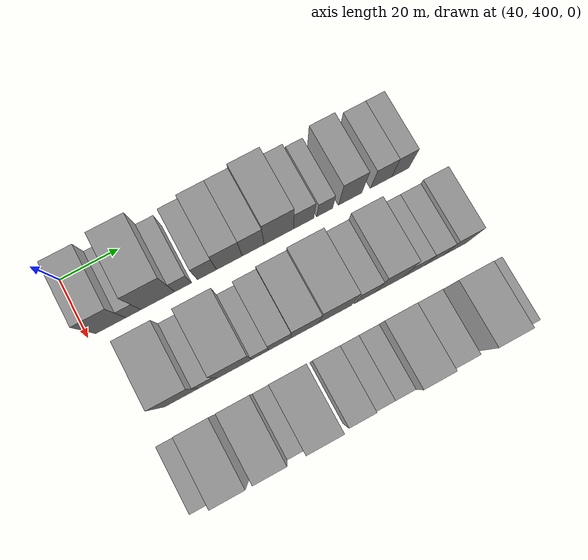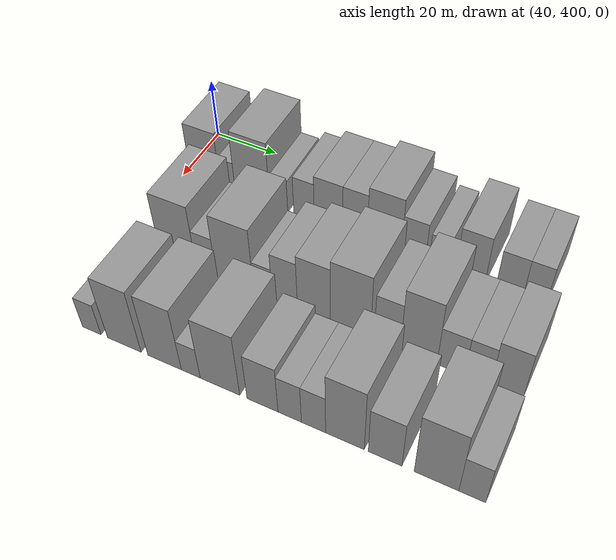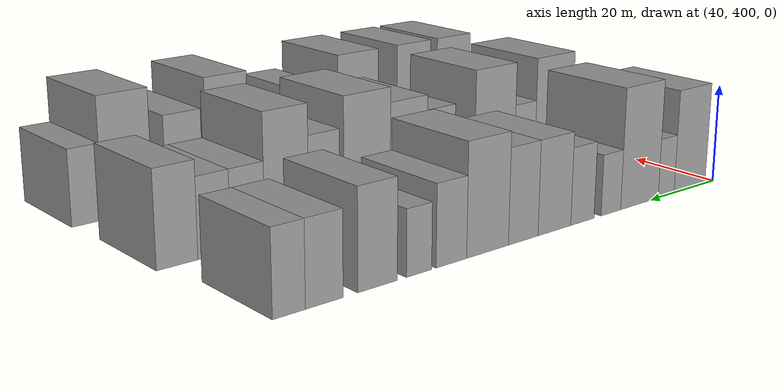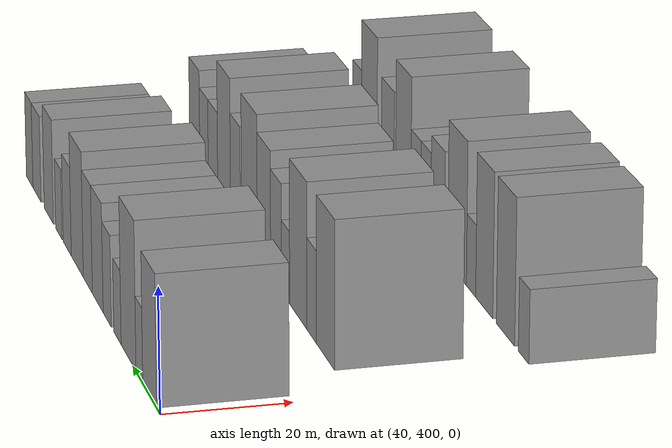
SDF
<sdf version="1.6">
 <world name="default">
  <model name="building_104">
   <static>1</static>
   <pose>50.0000 407.6872 0 0.000000 0.000000 0.000000</pose>
   <link name="link">
    <pose>0 0 10.50 0 0 0</pose>
    <collision name="collision"><geometry><box><size>20.0000 10.1046 21.0000</size></box></geometry></collision>
    <visual name="visual">
     <cast_shadows>0</cast_shadows>
     <geometry><box><size>20.0000 10.1046 21.0000</size></box></geometry>
     <material>
      <script>
       <uri>model://grey_wall/materials/scripts</uri>
       <uri>model://grey_wall/materials/textures</uri>
       <name>vrc/grey_wall</name>
      </script>
     </material>
    </visual>
   </link>
  </model>
  <model name="building_105">
   <static>1</static>
   <pose>50.0000 415.2380 0 0.000000 0.000000 0.000000</pose>
   <link name="link">
    <pose>0 0 6.00 0 0 0</pose>
    <collision name="collision"><geometry><box><size>20.0000 4.9970 12.0000</size></box></geometry></collision>
    <visual name="visual">
     <cast_shadows>0</cast_shadows>
     <geometry><box><size>20.0000 4.9970 12.0000</size></box></geometry>
     <material>
      <script>
       <uri>model://grey_wall/materials/scripts</uri>
       <uri>model://grey_wall/materials/textures</uri>
       <name>vrc/grey_wall</name>
      </script>
     </material>
    </visual>
   </link>
  </model>
  <model name="building_106">
   <static>1</static>
   <pose>50.0000 423.4185 0 0.000000 0.000000 0.000000</pose>
   <link name="link">
    <pose>0 0 12.00 0 0 0</pose>
    <collision name="collision"><geometry><box><size>20.0000 11.3640 24.0000</size></box></geometry></collision>
    <visual name="visual">
     <cast_shadows>0</cast_shadows>
     <geometry><box><size>20.0000 11.3640 24.0000</size></box></geometry>
     <material>
      <script>
       <uri>model://grey_wall/materials/scripts</uri>
       <uri>model://grey_wall/materials/textures</uri>
       <name>vrc/grey_wall</name>
      </script>
     </material>
    </visual>
   </link>
  </model>
  <model name="building_107">
   <static>1</static>
   <pose>50.0000 431.9391 0 0.000000 0.000000 0.000000</pose>
   <link name="link">
    <pose>0 0 6.00 0 0 0</pose>
    <collision name="collision"><geometry><box><size>20.0000 5.6773 12.0000</size></box></geometry></collision>
    <visual name="visual">
     <cast_shadows>0</cast_shadows>
     <geometry><box><size>20.0000 5.6773 12.0000</size></box></geometry>
     <material>
      <script>
       <uri>model://grey_wall/materials/scripts</uri>
       <uri>model://grey_wall/materials/textures</uri>
       <name>vrc/grey_wall</name>
      </script>
     </material>
    </visual>
   </link>
  </model>
  <model name="building_108">
   <static>1</static>
   <pose>50.0000 440.0176 0 0.000000 0.000000 0.000000</pose>
   <link name="link">
    <pose>0 0 7.50 0 0 0</pose>
    <collision name="collision"><geometry><box><size>20.0000 6.4796 15.0000</size></box></geometry></collision>
    <visual name="visual">
     <cast_shadows>0</cast_shadows>
     <geometry><box><size>20.0000 6.4796 15.0000</size></box></geometry>
     <material>
      <script>
       <uri>model://grey_wall/materials/scripts</uri>
       <uri>model://grey_wall/materials/textures</uri>
       <name>vrc/grey_wall</name>
      </script>
     </material>
    </visual>
   </link>
  </model>
  <model name="building_109">
   <static>1</static>
   <pose>50.0000 447.6348 0 0.000000 0.000000 0.000000</pose>
   <link name="link">
    <pose>0 0 9.00 0 0 0</pose>
    <collision name="collision"><geometry><box><size>20.0000 8.7548 18.0000</size></box></geometry></collision>
    <visual name="visual">
     <cast_shadows>0</cast_shadows>
     <geometry><box><size>20.0000 8.7548 18.0000</size></box></geometry>
     <material>
      <script>
       <uri>model://grey_wall/materials/scripts</uri>
       <uri>model://grey_wall/materials/textures</uri>
       <name>vrc/grey_wall</name>
      </script>
     </material>
    </visual>
   </link>
  </model>
  <model name="building_110">
   <static>1</static>
   <pose>50.0000 455.7867 0 0.000000 0.000000 0.000000</pose>
   <link name="link">
    <pose>0 0 9.00 0 0 0</pose>
    <collision name="collision"><geometry><box><size>20.0000 7.5490 18.0000</size></box></geometry></collision>
    <visual name="visual">
     <cast_shadows>0</cast_shadows>
     <geometry><box><size>20.0000 7.5490 18.0000</size></box></geometry>
     <material>
      <script>
       <uri>model://grey_wall/materials/scripts</uri>
       <uri>model://grey_wall/materials/textures</uri>
       <name>vrc/grey_wall</name>
      </script>
     </material>
    </visual>
   </link>
  </model>
  <model name="building_111">
   <static>1</static>
   <pose>50.0000 464.6653 0 0.000000 0.000000 0.000000</pose>
   <link name="link">
    <pose>0 0 10.50 0 0 0</pose>
    <collision name="collision"><geometry><box><size>20.0000 10.2081 21.0000</size></box></geometry></collision>
    <visual name="visual">
     <cast_shadows>0</cast_shadows>
     <geometry><box><size>20.0000 10.2081 21.0000</size></box></geometry>
     <material>
      <script>
       <uri>model://grey_wall/materials/scripts</uri>
       <uri>model://grey_wall/materials/textures</uri>
       <name>vrc/grey_wall</name>
      </script>
     </material>
    </visual>
   </link>
  </model>
  <model name="building_112">
   <static>1</static>
   <pose>50.0000 473.3105 0 0.000000 0.000000 0.000000</pose>
   <link name="link">
    <pose>0 0 7.50 0 0 0</pose>
    <collision name="collision"><geometry><box><size>20.0000 7.0825 15.0000</size></box></geometry></collision>
    <visual name="visual">
     <cast_shadows>0</cast_shadows>
     <geometry><box><size>20.0000 7.0825 15.0000</size></box></geometry>
     <material>
      <script>
       <uri>model://grey_wall/materials/scripts</uri>
       <uri>model://grey_wall/materials/textures</uri>
       <name>vrc/grey_wall</name>
      </script>
     </material>
    </visual>
   </link>
  </model>
  <model name="building_113">
   <static>1</static>
   <pose>50.0000 480.6647 0 0.000000 0.000000 0.000000</pose>
   <link name="link">
    <pose>0 0 6.00 0 0 0</pose>
    <collision name="collision"><geometry><box><size>20.0000 5.6259 12.0000</size></box></geometry></collision>
    <visual name="visual">
     <cast_shadows>0</cast_shadows>
     <geometry><box><size>20.0000 5.6259 12.0000</size></box></geometry>
     <material>
      <script>
       <uri>model://grey_wall/materials/scripts</uri>
       <uri>model://grey_wall/materials/textures</uri>
       <name>vrc/grey_wall</name>
      </script>
     </material>
    </visual>
   </link>
  </model>
  <model name="building_114">
   <static>1</static>
   <pose>50.0000 489.6404 0 0.000000 0.000000 0.000000</pose>
   <link name="link">
    <pose>0 0 9.00 0 0 0</pose>
    <collision name="collision"><geometry><box><size>20.0000 8.3254 18.0000</size></box></geometry></collision>
    <visual name="visual">
     <cast_shadows>0</cast_shadows>
     <geometry><box><size>20.0000 8.3254 18.0000</size></box></geometry>
     <material>
      <script>
       <uri>model://grey_wall/materials/scripts</uri>
       <uri>model://grey_wall/materials/textures</uri>
       <name>vrc/grey_wall</name>
      </script>
     </material>
    </visual>
   </link>
  </model>
  <model name="building_115">
   <static>1</static>
   <pose>50.0000 500.5345 0 0.000000 0.000000 0.000000</pose>
   <link name="link">
    <pose>0 0 7.50 0 0 0</pose>
    <collision name="collision"><geometry><box><size>20.0000 7.4629 15.0000</size></box></geometry></collision>
    <visual name="visual">
     <cast_shadows>0</cast_shadows>
     <geometry><box><size>20.0000 7.4629 15.0000</size></box></geometry>
     <material>
      <script>
       <uri>model://grey_wall/materials/scripts</uri>
       <uri>model://grey_wall/materials/textures</uri>
       <name>vrc/grey_wall</name>
      </script>
     </material>
    </visual>
   </link>
  </model>
  <model name="building_116">
   <static>1</static>
   <pose>50.0000 507.4129 0 0.000000 0.000000 0.000000</pose>
   <link name="link">
    <pose>0 0 7.50 0 0 0</pose>
    <collision name="collision"><geometry><box><size>20.0000 6.2939 15.0000</size></box></geometry></collision>
    <visual name="visual">
     <cast_shadows>0</cast_shadows>
     <geometry><box><size>20.0000 6.2939 15.0000</size></box></geometry>
     <material>
      <script>
       <uri>model://grey_wall/materials/scripts</uri>
       <uri>model://grey_wall/materials/textures</uri>
       <name>vrc/grey_wall</name>
      </script>
     </material>
    </visual>
   </link>
  </model>
  <model name="building_218">
   <static>1</static>
   <pose>79.0000 416.7580 0 0.000000 0.000000 0.000000</pose>
   <link name="link">
    <pose>0 0 12.00 0 0 0</pose>
    <collision name="collision"><geometry><box><size>20.0000 11.4493 24.0000</size></box></geometry></collision>
    <visual name="visual">
     <cast_shadows>0</cast_shadows>
     <geometry><box><size>20.0000 11.4493 24.0000</size></box></geometry>
     <material>
      <script>
       <uri>model://grey_wall/materials/scripts</uri>
       <uri>model://grey_wall/materials/textures</uri>
       <name>vrc/grey_wall</name>
      </script>
     </material>
    </visual>
   </link>
  </model>
  <model name="building_219">
   <static>1</static>
   <pose>79.0000 425.5563 0 0.000000 0.000000 0.000000</pose>
   <link name="link">
    <pose>0 0 7.50 0 0 0</pose>
    <collision name="collision"><geometry><box><size>20.0000 6.1472 15.0000</size></box></geometry></collision>
    <visual name="visual">
     <cast_shadows>0</cast_shadows>
     <geometry><box><size>20.0000 6.1472 15.0000</size></box></geometry>
     <material>
      <script>
       <uri>model://grey_wall/materials/scripts</uri>
       <uri>model://grey_wall/materials/textures</uri>
       <name>vrc/grey_wall</name>
      </script>
     </material>
    </visual>
   </link>
  </model>
  <model name="building_220">
   <static>1</static>
   <pose>79.0000 434.3610 0 0.000000 0.000000 0.000000</pose>
   <link name="link">
    <pose>0 0 12.00 0 0 0</pose>
    <collision name="collision"><geometry><box><size>20.0000 11.4622 24.0000</size></box></geometry></collision>
    <visual name="visual">
     <cast_shadows>0</cast_shadows>
     <geometry><box><size>20.0000 11.4622 24.0000</size></box></geometry>
     <material>
      <script>
       <uri>model://grey_wall/materials/scripts</uri>
       <uri>model://grey_wall/materials/textures</uri>
       <name>vrc/grey_wall</name>
      </script>
     </material>
    </visual>
   </link>
  </model>
  <model name="building_221">
   <static>1</static>
   <pose>79.0000 442.8890 0 0.000000 0.000000 0.000000</pose>
   <link name="link">
    <pose>0 0 6.00 0 0 0</pose>
    <collision name="collision"><geometry><box><size>20.0000 5.5937 12.0000</size></box></geometry></collision>
    <visual name="visual">
     <cast_shadows>0</cast_shadows>
     <geometry><box><size>20.0000 5.5937 12.0000</size></box></geometry>
     <material>
      <script>
       <uri>model://grey_wall/materials/scripts</uri>
       <uri>model://grey_wall/materials/textures</uri>
       <name>vrc/grey_wall</name>
      </script>
     </material>
    </visual>
   </link>
  </model>
  <model name="building_222">
   <static>1</static>
   <pose>79.0000 449.3753 0 0.000000 0.000000 0.000000</pose>
   <link name="link">
    <pose>0 0 9.00 0 0 0</pose>
    <collision name="collision"><geometry><box><size>20.0000 7.3790 18.0000</size></box></geometry></collision>
    <visual name="visual">
     <cast_shadows>0</cast_shadows>
     <geometry><box><size>20.0000 7.3790 18.0000</size></box></geometry>
     <material>
      <script>
       <uri>model://grey_wall/materials/scripts</uri>
       <uri>model://grey_wall/materials/textures</uri>
       <name>vrc/grey_wall</name>
      </script>
     </material>
    </visual>
   </link>
  </model>
  <model name="building_223">
   <static>1</static>
   <pose>79.0000 457.7727 0 0.000000 0.000000 0.000000</pose>
   <link name="link">
    <pose>0 0 10.50 0 0 0</pose>
    <collision name="collision"><geometry><box><size>20.0000 9.4157 21.0000</size></box></geometry></collision>
    <visual name="visual">
     <cast_shadows>0</cast_shadows>
     <geometry><box><size>20.0000 9.4157 21.0000</size></box></geometry>
     <material>
      <script>
       <uri>model://grey_wall/materials/scripts</uri>
       <uri>model://grey_wall/materials/textures</uri>
       <name>vrc/grey_wall</name>
      </script>
     </material>
    </visual>
   </link>
  </model>
  <model name="building_224">
   <static>1</static>
   <pose>79.0000 468.1235 0 0.000000 0.000000 0.000000</pose>
   <link name="link">
    <pose>0 0 12.00 0 0 0</pose>
    <collision name="collision"><geometry><box><size>20.0000 11.2860 24.0000</size></box></geometry></collision>
    <visual name="visual">
     <cast_shadows>0</cast_shadows>
     <geometry><box><size>20.0000 11.2860 24.0000</size></box></geometry>
     <material>
      <script>
       <uri>model://grey_wall/materials/scripts</uri>
       <uri>model://grey_wall/materials/textures</uri>
       <name>vrc/grey_wall</name>
      </script>
     </material>
    </visual>
   </link>
  </model>
  <model name="building_225">
   <static>1</static>
   <pose>79.0000 478.3700 0 0.000000 0.000000 0.000000</pose>
   <link name="link">
    <pose>0 0 9.00 0 0 0</pose>
    <collision name="collision"><geometry><box><size>20.0000 7.2070 18.0000</size></box></geometry></collision>
    <visual name="visual">
     <cast_shadows>0</cast_shadows>
     <geometry><box><size>20.0000 7.2070 18.0000</size></box></geometry>
     <material>
      <script>
       <uri>model://grey_wall/materials/scripts</uri>
       <uri>model://grey_wall/materials/textures</uri>
       <name>vrc/grey_wall</name>
      </script>
     </material>
    </visual>
   </link>
  </model>
  <model name="building_226">
   <static>1</static>
   <pose>79.0000 486.8627 0 0.000000 0.000000 0.000000</pose>
   <link name="link">
    <pose>0 0 12.00 0 0 0</pose>
    <collision name="collision"><geometry><box><size>20.0000 9.7782 24.0000</size></box></geometry></collision>
    <visual name="visual">
     <cast_shadows>0</cast_shadows>
     <geometry><box><size>20.0000 9.7782 24.0000</size></box></geometry>
     <material>
      <script>
       <uri>model://grey_wall/materials/scripts</uri>
       <uri>model://grey_wall/materials/textures</uri>
       <name>vrc/grey_wall</name>
      </script>
     </material>
    </visual>
   </link>
  </model>
  <model name="building_227">
   <static>1</static>
   <pose>79.0000 495.4021 0 0.000000 0.000000 0.000000</pose>
   <link name="link">
    <pose>0 0 7.50 0 0 0</pose>
    <collision name="collision"><geometry><box><size>20.0000 7.3007 15.0000</size></box></geometry></collision>
    <visual name="visual">
     <cast_shadows>0</cast_shadows>
     <geometry><box><size>20.0000 7.3007 15.0000</size></box></geometry>
     <material>
      <script>
       <uri>model://grey_wall/materials/scripts</uri>
       <uri>model://grey_wall/materials/textures</uri>
       <name>vrc/grey_wall</name>
      </script>
     </material>
    </visual>
   </link>
  </model>
  <model name="building_228">
   <static>1</static>
   <pose>79.0000 502.3948 0 0.000000 0.000000 0.000000</pose>
   <link name="link">
    <pose>0 0 7.50 0 0 0</pose>
    <collision name="collision"><geometry><box><size>20.0000 6.6848 15.0000</size></box></geometry></collision>
    <visual name="visual">
     <cast_shadows>0</cast_shadows>
     <geometry><box><size>20.0000 6.6848 15.0000</size></box></geometry>
     <material>
      <script>
       <uri>model://grey_wall/materials/scripts</uri>
       <uri>model://grey_wall/materials/textures</uri>
       <name>vrc/grey_wall</name>
      </script>
     </material>
    </visual>
   </link>
  </model>
  <model name="building_229">
   <static>1</static>
   <pose>79.0000 509.8208 0 0.000000 0.000000 0.000000</pose>
   <link name="link">
    <pose>0 0 9.00 0 0 0</pose>
    <collision name="collision"><geometry><box><size>20.0000 8.1672 18.0000</size></box></geometry></collision>
    <visual name="visual">
     <cast_shadows>0</cast_shadows>
     <geometry><box><size>20.0000 8.1672 18.0000</size></box></geometry>
     <material>
      <script>
       <uri>model://grey_wall/materials/scripts</uri>
       <uri>model://grey_wall/materials/textures</uri>
       <name>vrc/grey_wall</name>
      </script>
     </material>
    </visual>
   </link>
  </model>
  <model name="building_333">
   <static>1</static>
   <pose>108.0000 409.2867 0 0.000000 0.000000 0.000000</pose>
   <link name="link">
    <pose>0 0 6.00 0 0 0</pose>
    <collision name="collision"><geometry><box><size>20.0000 5.6834 12.0000</size></box></geometry></collision>
    <visual name="visual">
     <cast_shadows>0</cast_shadows>
     <geometry><box><size>20.0000 5.6834 12.0000</size></box></geometry>
     <material>
      <script>
       <uri>model://grey_wall/materials/scripts</uri>
       <uri>model://grey_wall/materials/textures</uri>
       <name>vrc/grey_wall</name>
      </script>
     </material>
    </visual>
   </link>
  </model>
  <model name="building_334">
   <static>1</static>
   <pose>108.0000 419.1911 0 0.000000 0.000000 0.000000</pose>
   <link name="link">
    <pose>0 0 12.00 0 0 0</pose>
    <collision name="collision"><geometry><box><size>20.0000 10.1255 24.0000</size></box></geometry></collision>
    <visual name="visual">
     <cast_shadows>0</cast_shadows>
     <geometry><box><size>20.0000 10.1255 24.0000</size></box></geometry>
     <material>
      <script>
       <uri>model://grey_wall/materials/scripts</uri>
       <uri>model://grey_wall/materials/textures</uri>
       <name>vrc/grey_wall</name>
      </script>
     </material>
    </visual>
   </link>
  </model>
  <model name="building_335">
   <static>1</static>
   <pose>108.0000 431.1496 0 0.000000 0.000000 0.000000</pose>
   <link name="link">
    <pose>0 0 12.00 0 0 0</pose>
    <collision name="collision"><geometry><box><size>20.0000 9.7914 24.0000</size></box></geometry></collision>
    <visual name="visual">
     <cast_shadows>0</cast_shadows>
     <geometry><box><size>20.0000 9.7914 24.0000</size></box></geometry>
     <material>
      <script>
       <uri>model://grey_wall/materials/scripts</uri>
       <uri>model://grey_wall/materials/textures</uri>
       <name>vrc/grey_wall</name>
      </script>
     </material>
    </visual>
   </link>
  </model>
  <model name="building_336">
   <static>1</static>
   <pose>108.0000 438.7518 0 0.000000 0.000000 0.000000</pose>
   <link name="link">
    <pose>0 0 6.00 0 0 0</pose>
    <collision name="collision"><geometry><box><size>20.0000 5.4130 12.0000</size></box></geometry></collision>
    <visual name="visual">
     <cast_shadows>0</cast_shadows>
     <geometry><box><size>20.0000 5.4130 12.0000</size></box></geometry>
     <material>
      <script>
       <uri>model://grey_wall/materials/scripts</uri>
       <uri>model://grey_wall/materials/textures</uri>
       <name>vrc/grey_wall</name>
      </script>
     </material>
    </visual>
   </link>
  </model>
  <model name="building_337">
   <static>1</static>
   <pose>108.0000 446.9884 0 0.000000 0.000000 0.000000</pose>
   <link name="link">
    <pose>0 0 12.00 0 0 0</pose>
    <collision name="collision"><geometry><box><size>20.0000 11.0601 24.0000</size></box></geometry></collision>
    <visual name="visual">
     <cast_shadows>0</cast_shadows>
     <geometry><box><size>20.0000 11.0601 24.0000</size></box></geometry>
     <material>
      <script>
       <uri>model://grey_wall/materials/scripts</uri>
       <uri>model://grey_wall/materials/textures</uri>
       <name>vrc/grey_wall</name>
      </script>
     </material>
    </visual>
   </link>
  </model>
  <model name="building_338">
   <static>1</static>
   <pose>108.0000 458.7392 0 0.000000 0.000000 0.000000</pose>
   <link name="link">
    <pose>0 0 9.00 0 0 0</pose>
    <collision name="collision"><geometry><box><size>20.0000 8.4416 18.0000</size></box></geometry></collision>
    <visual name="visual">
     <cast_shadows>0</cast_shadows>
     <geometry><box><size>20.0000 8.4416 18.0000</size></box></geometry>
     <material>
      <script>
       <uri>model://grey_wall/materials/scripts</uri>
       <uri>model://grey_wall/materials/textures</uri>
       <name>vrc/grey_wall</name>
      </script>
     </material>
    </visual>
   </link>
  </model>
  <model name="building_339">
   <static>1</static>
   <pose>108.0000 466.0679 0 0.000000 0.000000 0.000000</pose>
   <link name="link">
    <pose>0 0 7.50 0 0 0</pose>
    <collision name="collision"><geometry><box><size>20.0000 6.2158 15.0000</size></box></geometry></collision>
    <visual name="visual">
     <cast_shadows>0</cast_shadows>
     <geometry><box><size>20.0000 6.2158 15.0000</size></box></geometry>
     <material>
      <script>
       <uri>model://grey_wall/materials/scripts</uri>
       <uri>model://grey_wall/materials/textures</uri>
       <name>vrc/grey_wall</name>
      </script>
     </material>
    </visual>
   </link>
  </model>
  <model name="building_340">
   <static>1</static>
   <pose>108.0000 472.3453 0 0.000000 0.000000 0.000000</pose>
   <link name="link">
    <pose>0 0 7.50 0 0 0</pose>
    <collision name="collision"><geometry><box><size>20.0000 6.3391 15.0000</size></box></geometry></collision>
    <visual name="visual">
     <cast_shadows>0</cast_shadows>
     <geometry><box><size>20.0000 6.3391 15.0000</size></box></geometry>
     <material>
      <script>
       <uri>model://grey_wall/materials/scripts</uri>
       <uri>model://grey_wall/materials/textures</uri>
       <name>vrc/grey_wall</name>
      </script>
     </material>
    </visual>
   </link>
  </model>
  <model name="building_341">
   <static>1</static>
   <pose>108.0000 480.4631 0 0.000000 0.000000 0.000000</pose>
   <link name="link">
    <pose>0 0 12.00 0 0 0</pose>
    <collision name="collision"><geometry><box><size>20.0000 9.8967 24.0000</size></box></geometry></collision>
    <visual name="visual">
     <cast_shadows>0</cast_shadows>
     <geometry><box><size>20.0000 9.8967 24.0000</size></box></geometry>
     <material>
      <script>
       <uri>model://grey_wall/materials/scripts</uri>
       <uri>model://grey_wall/materials/textures</uri>
       <name>vrc/grey_wall</name>
      </script>
     </material>
    </visual>
   </link>
  </model>
  <model name="building_342">
   <static>1</static>
   <pose>108.0000 490.6073 0 0.000000 0.000000 0.000000</pose>
   <link name="link">
    <pose>0 0 9.00 0 0 0</pose>
    <collision name="collision"><geometry><box><size>20.0000 8.3915 18.0000</size></box></geometry></collision>
    <visual name="visual">
     <cast_shadows>0</cast_shadows>
     <geometry><box><size>20.0000 8.3915 18.0000</size></box></geometry>
     <material>
      <script>
       <uri>model://grey_wall/materials/scripts</uri>
       <uri>model://grey_wall/materials/textures</uri>
       <name>vrc/grey_wall</name>
      </script>
     </material>
    </visual>
   </link>
  </model>
  <model name="building_343">
   <static>1</static>
   <pose>108.0000 503.1635 0 0.000000 0.000000 0.000000</pose>
   <link name="link">
    <pose>0 0 12.00 0 0 0</pose>
    <collision name="collision"><geometry><box><size>20.0000 10.7210 24.0000</size></box></geometry></collision>
    <visual name="visual">
     <cast_shadows>0</cast_shadows>
     <geometry><box><size>20.0000 10.7210 24.0000</size></box></geometry>
     <material>
      <script>
       <uri>model://grey_wall/materials/scripts</uri>
       <uri>model://grey_wall/materials/textures</uri>
       <name>vrc/grey_wall</name>
      </script>
     </material>
    </visual>
   </link>
  </model>
  <model name="building_344">
   <static>1</static>
   <pose>108.0000 511.6903 0 0.000000 0.000000 0.000000</pose>
   <link name="link">
    <pose>0 0 7.50 0 0 0</pose>
    <collision name="collision"><geometry><box><size>20.0000 6.3326 15.0000</size></box></geometry></collision>
    <visual name="visual">
     <cast_shadows>0</cast_shadows>
     <geometry><box><size>20.0000 6.3326 15.0000</size></box></geometry>
     <material>
      <script>
       <uri>model://grey_wall/materials/scripts</uri>
       <uri>model://grey_wall/materials/textures</uri>
       <name>vrc/grey_wall</name>
      </script>
     </material>
    </visual>
   </link>
  </model>
 </world>
</sdf>
